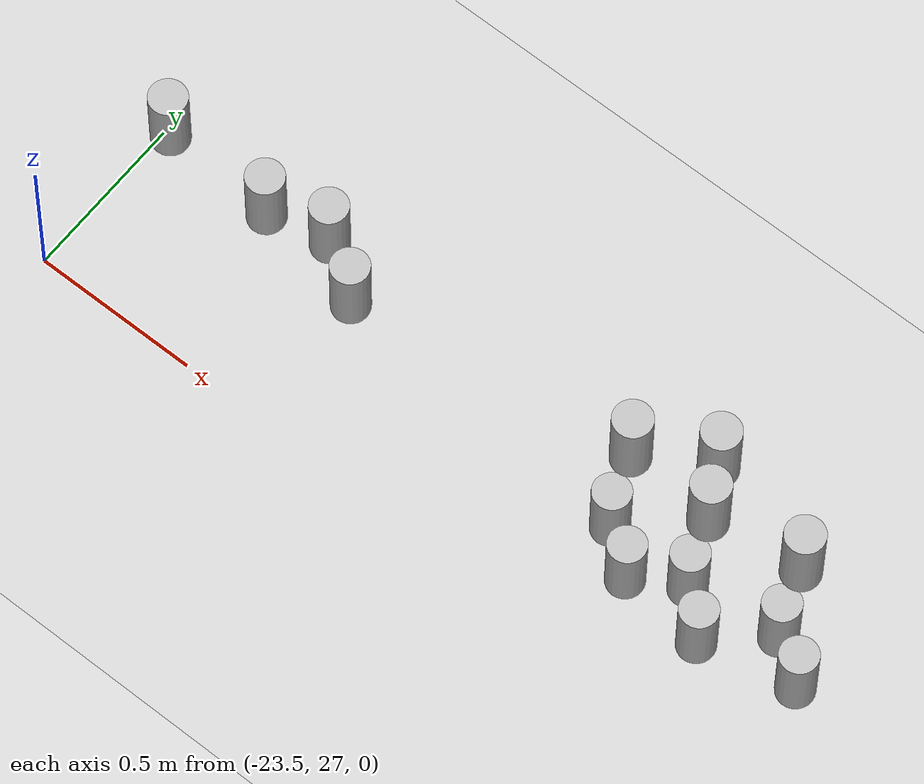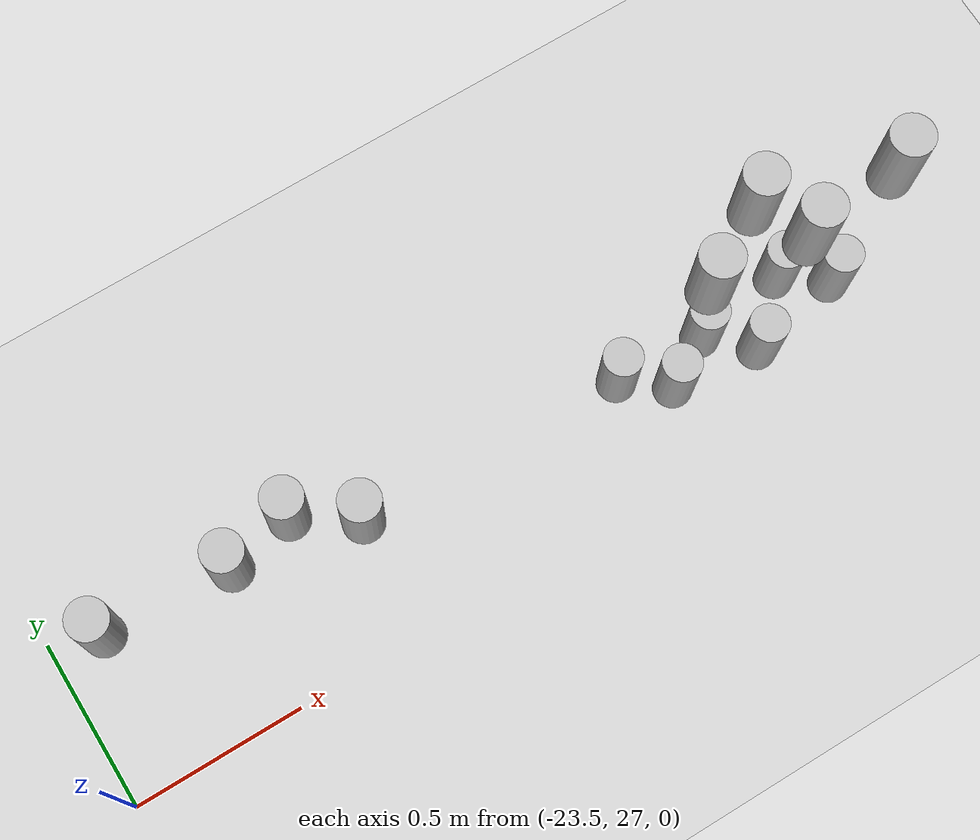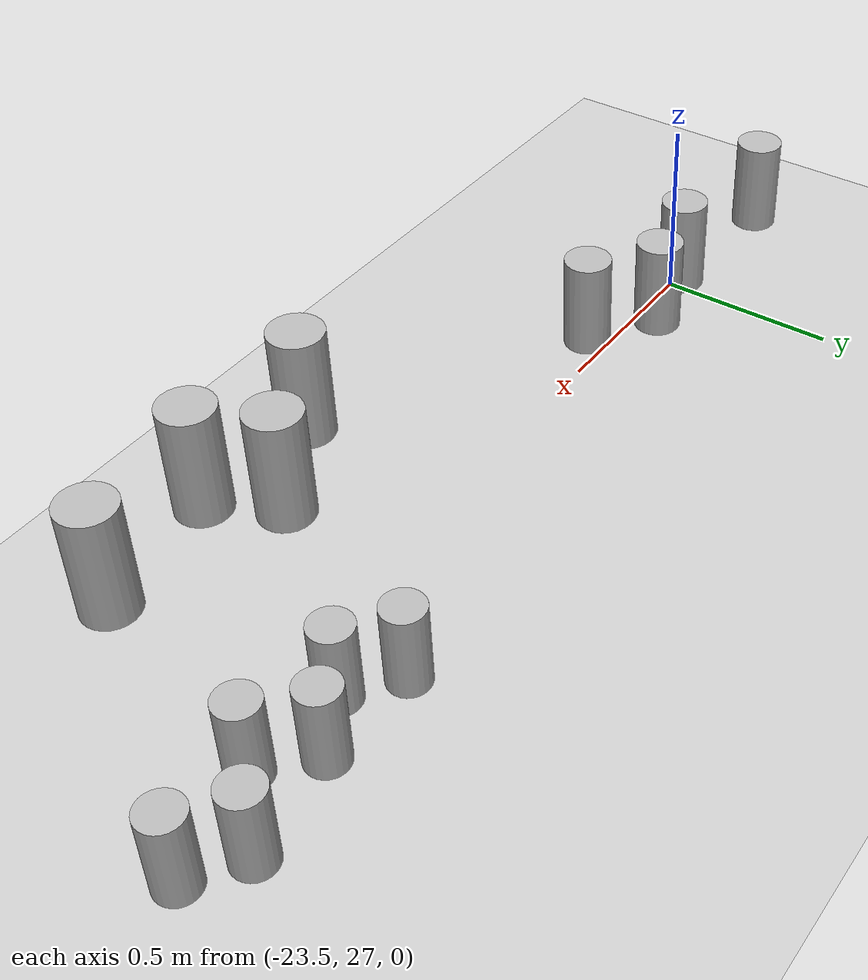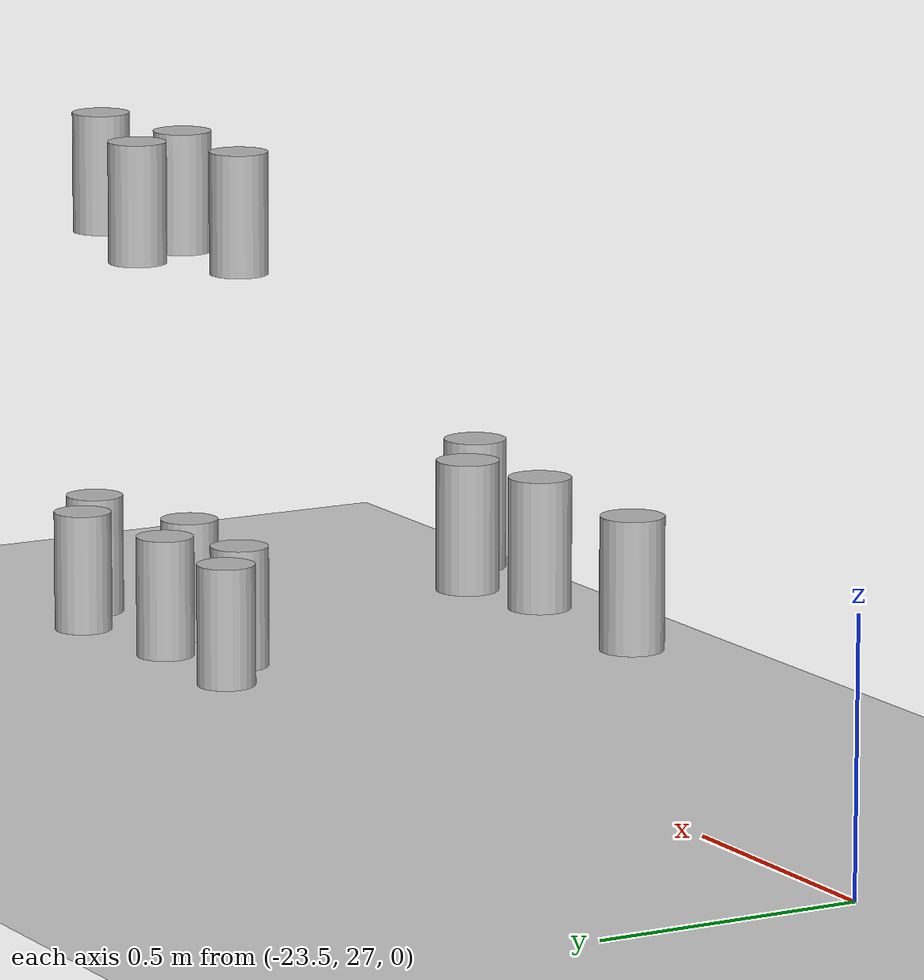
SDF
<sdf version="1.7">
 <world name="default">
  <model name="ground_plane">
   <static>1</static>
   <link name="link">
    <collision name="collision">
     <geometry><plane><normal>0 0 1</normal><size>100 100</size></plane></geometry>
     <surface>
      <contact><collide_bitmask>65535</collide_bitmask></contact>
      <friction><ode><mu>100</mu><mu2>50</mu2></ode></friction>
     </surface>
    </collision>
    <visual name="visual">
     <cast_shadows>0</cast_shadows>
     <geometry><plane><normal>0 0 1</normal><size>100 100</size></plane></geometry>
     <material>
      <script><uri>file://media/materials/scripts/gazebo.material</uri><name>Gazebo/Grey</name></script>
     </material>
    </visual>
   </link>
  </model>
  <model name="beer_clone_7_clone_5">
   <link name="link">
    <pose>0 0 0.115 0 -0 0</pose>
    <inertial>
     <mass>0.39</mass>
     <inertia><ixx>0.00058</ixx><ixy>0</ixy><ixz>0</ixz><iyy>0.00058</iyy><iyz>0</iyz><izz>0.00019</izz></inertia>
    </inertial>
    <collision name="collision">
     <geometry><cylinder><radius>0.055</radius><length>0.23</length></cylinder></geometry>
    </collision>
    <visual name="visual">
     <geometry><cylinder><radius>0.055</radius><length>0.23</length></cylinder></geometry>
     <material>
      <script>
       <uri>model://beer/materials/scripts</uri>
       <uri>model://beer/materials/textures</uri>
       <name>Beer/Diffuse</name>
      </script>
     </material>
    </visual>
   </link>
   <pose>-21.8122 27.3165 0.060002 7e-06 -2.5e-05 0.016384</pose>
  </model>
  <model name="beer_clone_7_clone_6">
   <link name="link">
    <pose>0 0 0.115 0 -0 0</pose>
    <inertial>
     <mass>0.39</mass>
     <inertia><ixx>0.00058</ixx><ixy>0</ixy><ixz>0</ixz><iyy>0.00058</iyy><iyz>0</iyz><izz>0.00019</izz></inertia>
    </inertial>
    <collision name="collision">
     <geometry><cylinder><radius>0.055</radius><length>0.23</length></cylinder></geometry>
    </collision>
    <visual name="visual">
     <geometry><cylinder><radius>0.055</radius><length>0.23</length></cylinder></geometry>
     <material>
      <script>
       <uri>model://beer/materials/scripts</uri>
       <uri>model://beer/materials/textures</uri>
       <name>Beer/Diffuse</name>
      </script>
     </material>
    </visual>
   </link>
   <pose>-21.6877 27.2228 0.060002 1e-06 -2.7e-05 0.016713</pose>
  </model>
  <model name="beer_clone_7_clone_7">
   <link name="link">
    <pose>0 0 0.115 0 -0 0</pose>
    <inertial>
     <mass>0.39</mass>
     <inertia><ixx>0.00058</ixx><ixy>0</ixy><ixz>0</ixz><iyy>0.00058</iyy><iyz>0</iyz><izz>0.00019</izz></inertia>
    </inertial>
    <collision name="collision">
     <geometry><cylinder><radius>0.055</radius><length>0.23</length></cylinder></geometry>
    </collision>
    <visual name="visual">
     <geometry><cylinder><radius>0.055</radius><length>0.23</length></cylinder></geometry>
     <material>
      <script>
       <uri>model://beer/materials/scripts</uri>
       <uri>model://beer/materials/textures</uri>
       <name>Beer/Diffuse</name>
      </script>
     </material>
    </visual>
   </link>
   <pose>-21.5446 27.3061 0.059992 2.6e-05 -6e-06 0.019321</pose>
  </model>
  <model name="beer_clone_7_clone_8">
   <link name="link">
    <pose>0 0 0.115 0 -0 0</pose>
    <inertial>
     <mass>0.39</mass>
     <inertia><ixx>0.00058</ixx><ixy>0</ixy><ixz>0</ixz><iyy>0.00058</iyy><iyz>0</iyz><izz>0.00019</izz></inertia>
    </inertial>
    <collision name="collision">
     <geometry><cylinder><radius>0.055</radius><length>0.23</length></cylinder></geometry>
    </collision>
    <visual name="visual">
     <geometry><cylinder><radius>0.055</radius><length>0.23</length></cylinder></geometry>
     <material>
      <script>
       <uri>model://beer/materials/scripts</uri>
       <uri>model://beer/materials/textures</uri>
       <name>Beer/Diffuse</name>
      </script>
     </material>
    </visual>
   </link>
   <pose>-21.4292 27.195 0.060002 -1e-06 2.6e-05 0.016786</pose>
  </model>
  <model name="beer_clone_7_clone_9">
   <link name="link">
    <pose>0 0 0.115 0 -0 0</pose>
    <inertial>
     <mass>0.39</mass>
     <inertia><ixx>0.00058</ixx><ixy>0</ixy><ixz>0</ixz><iyy>0.00058</iyy><iyz>0</iyz><izz>0.00019</izz></inertia>
    </inertial>
    <collision name="collision">
     <geometry><cylinder><radius>0.055</radius><length>0.23</length></cylinder></geometry>
    </collision>
    <visual name="visual">
     <geometry><cylinder><radius>0.055</radius><length>0.23</length></cylinder></geometry>
     <material>
      <script>
       <uri>model://beer/materials/scripts</uri>
       <uri>model://beer/materials/textures</uri>
       <name>Beer/Diffuse</name>
      </script>
     </material>
    </visual>
   </link>
   <pose>-21.2734 27.3441 0.059992 2.7e-05 -1.4e-05 0.019098</pose>
  </model>
  <model name="beer_clone_7_clone_10">
   <link name="link">
    <pose>0 0 0.115 0 -0 0</pose>
    <inertial>
     <mass>0.39</mass>
     <inertia><ixx>0.00058</ixx><ixy>0</ixy><ixz>0</ixz><iyy>0.00058</iyy><iyz>0</iyz><izz>0.00019</izz></inertia>
    </inertial>
    <collision name="collision">
     <geometry><cylinder><radius>0.055</radius><length>0.23</length></cylinder></geometry>
    </collision>
    <visual name="visual">
     <geometry><cylinder><radius>0.055</radius><length>0.23</length></cylinder></geometry>
     <material>
      <script>
       <uri>model://beer/materials/scripts</uri>
       <uri>model://beer/materials/textures</uri>
       <name>Beer/Diffuse</name>
      </script>
     </material>
    </visual>
   </link>
   <pose>-21.1497 27.2564 0.059992 2.7e-05 1.5e-05 0.016624</pose>
  </model>
  <model name="beer_clone_9_clone_10_clone">
   <link name="link">
    <pose>0 0 0.115 0 -0 0</pose>
    <inertial>
     <mass>0.39</mass>
     <inertia><ixx>0.00058</ixx><ixy>0</ixy><ixz>0</ixz><iyy>0.00058</iyy><iyz>0</iyz><izz>0.00019</izz></inertia>
    </inertial>
    <collision name="collision">
     <geometry><cylinder><radius>0.055</radius><length>0.23</length></cylinder></geometry>
    </collision>
    <visual name="visual">
     <geometry><cylinder><radius>0.055</radius><length>0.23</length></cylinder></geometry>
     <material>
      <script>
       <uri>model://beer/materials/scripts</uri>
       <uri>model://beer/materials/textures</uri>
       <name>Beer/Diffuse</name>
      </script>
     </material>
    </visual>
   </link>
   <pose>-23.3173 27.334 0.440001 1.6e-05 -0 0.00527</pose>
  </model>
  <model name="beer_clone_9_clone_10_clone_1">
   <link name="link">
    <pose>0 0 0.115 0 -0 0</pose>
    <inertial>
     <mass>0.39</mass>
     <inertia><ixx>0.00058</ixx><ixy>0</ixy><ixz>0</ixz><iyy>0.00058</iyy><iyz>0</iyz><izz>0.00019</izz></inertia>
    </inertial>
    <collision name="collision">
     <geometry><cylinder><radius>0.055</radius><length>0.23</length></cylinder></geometry>
    </collision>
    <visual name="visual">
     <geometry><cylinder><radius>0.055</radius><length>0.23</length></cylinder></geometry>
     <material>
      <script>
       <uri>model://beer/materials/scripts</uri>
       <uri>model://beer/materials/textures</uri>
       <name>Beer/Diffuse</name>
      </script>
     </material>
    </visual>
   </link>
   <pose>-22.9716 27.3137 0.440001 2e-05 4e-06 0.007199</pose>
  </model>
  <model name="beer_clone_9_clone_10_clone_2">
   <link name="link">
    <pose>0 0 0.115 0 -0 0</pose>
    <inertial>
     <mass>0.39</mass>
     <inertia><ixx>0.00058</ixx><ixy>0</ixy><ixz>0</ixz><iyy>0.00058</iyy><iyz>0</iyz><izz>0.00019</izz></inertia>
    </inertial>
    <collision name="collision">
     <geometry><cylinder><radius>0.055</radius><length>0.23</length></cylinder></geometry>
    </collision>
    <visual name="visual">
     <geometry><cylinder><radius>0.055</radius><length>0.23</length></cylinder></geometry>
     <material>
      <script>
       <uri>model://beer/materials/scripts</uri>
       <uri>model://beer/materials/textures</uri>
       <name>Beer/Diffuse</name>
      </script>
     </material>
    </visual>
   </link>
   <pose>-22.7882 27.3524 0.440002 -1.4e-05 -2.4e-05 0.006631</pose>
  </model>
  <model name="beer_clone_9_clone_10_clone_3">
   <link name="link">
    <pose>0 0 0.115 0 -0 0</pose>
    <inertial>
     <mass>0.39</mass>
     <inertia><ixx>0.00058</ixx><ixy>0</ixy><ixz>0</ixz><iyy>0.00058</iyy><iyz>0</iyz><izz>0.00019</izz></inertia>
    </inertial>
    <collision name="collision">
     <geometry><cylinder><radius>0.055</radius><length>0.23</length></cylinder></geometry>
    </collision>
    <visual name="visual">
     <geometry><cylinder><radius>0.055</radius><length>0.23</length></cylinder></geometry>
     <material>
      <script>
       <uri>model://beer/materials/scripts</uri>
       <uri>model://beer/materials/textures</uri>
       <name>Beer/Diffuse</name>
      </script>
     </material>
    </visual>
   </link>
   <pose>-22.6349 27.2511 0.440002 1.8e-05 -2.9e-05 0.003613</pose>
  </model>
  <model name="beer_clone_9_clone_9_clone_6_clone_6">
   <link name="link">
    <pose>0 0 0.115 0 -0 0</pose>
    <inertial>
     <mass>0.39</mass>
     <inertia><ixx>0.00058</ixx><ixy>0</ixy><ixz>0</ixz><iyy>0.00058</iyy><iyz>0</iyz><izz>0.00019</izz></inertia>
    </inertial>
    <collision name="collision">
     <geometry><cylinder><radius>0.055</radius><length>0.23</length></cylinder></geometry>
    </collision>
    <visual name="visual">
     <geometry><cylinder><radius>0.055</radius><length>0.23</length></cylinder></geometry>
     <material>
      <script>
       <uri>model://beer/materials/scripts</uri>
       <uri>model://beer/materials/textures</uri>
       <name>Beer/Diffuse</name>
      </script>
     </material>
    </visual>
   </link>
   <pose>-21.6964 27.2248 0.80999 -1e-06 2.6e-05 0.005697</pose>
  </model>
  <model name="beer_clone_9_clone_9_clone_6_clone_7">
   <link name="link">
    <pose>0 0 0.115 0 -0 0</pose>
    <inertial>
     <mass>0.39</mass>
     <inertia><ixx>0.00058</ixx><ixy>0</ixy><ixz>0</ixz><iyy>0.00058</iyy><iyz>0</iyz><izz>0.00019</izz></inertia>
    </inertial>
    <collision name="collision">
     <geometry><cylinder><radius>0.055</radius><length>0.23</length></cylinder></geometry>
    </collision>
    <visual name="visual">
     <geometry><cylinder><radius>0.055</radius><length>0.23</length></cylinder></geometry>
     <material>
      <script>
       <uri>model://beer/materials/scripts</uri>
       <uri>model://beer/materials/textures</uri>
       <name>Beer/Diffuse</name>
      </script>
     </material>
    </visual>
   </link>
   <pose>-21.5036 27.3378 0.809999 -2e-06 -1.1e-05 0.006995</pose>
  </model>
  <model name="beer_clone_9_clone_9_clone_6_clone_8">
   <link name="link">
    <pose>0 0 0.115 0 -0 0</pose>
    <inertial>
     <mass>0.39</mass>
     <inertia><ixx>0.00058</ixx><ixy>0</ixy><ixz>0</ixz><iyy>0.00058</iyy><iyz>0</iyz><izz>0.00019</izz></inertia>
    </inertial>
    <collision name="collision">
     <geometry><cylinder><radius>0.055</radius><length>0.23</length></cylinder></geometry>
    </collision>
    <visual name="visual">
     <geometry><cylinder><radius>0.055</radius><length>0.23</length></cylinder></geometry>
     <material>
      <script>
       <uri>model://beer/materials/scripts</uri>
       <uri>model://beer/materials/textures</uri>
       <name>Beer/Diffuse</name>
      </script>
     </material>
    </visual>
   </link>
   <pose>-21.4342 27.2069 0.809992 2.7e-05 1.8e-05 0.006286</pose>
  </model>
  <model name="beer_clone_9_clone_9_clone_6_clone_10">
   <link name="link">
    <pose>0 0 0.115 0 -0 0</pose>
    <inertial>
     <mass>0.39</mass>
     <inertia><ixx>0.00058</ixx><ixy>0</ixy><ixz>0</ixz><iyy>0.00058</iyy><iyz>0</iyz><izz>0.00019</izz></inertia>
    </inertial>
    <collision name="collision">
     <geometry><cylinder><radius>0.055</radius><length>0.23</length></cylinder></geometry>
    </collision>
    <visual name="visual">
     <geometry><cylinder><radius>0.055</radius><length>0.23</length></cylinder></geometry>
     <material>
      <script>
       <uri>model://beer/materials/scripts</uri>
       <uri>model://beer/materials/textures</uri>
       <name>Beer/Diffuse</name>
      </script>
     </material>
    </visual>
   </link>
   <pose>-21.1685 27.2446 0.810002 2.8e-05 1.6e-05 0.005309</pose>
  </model>
 </world>
</sdf>
